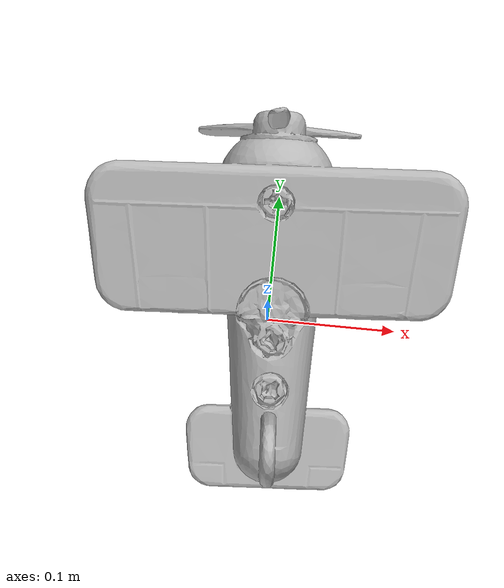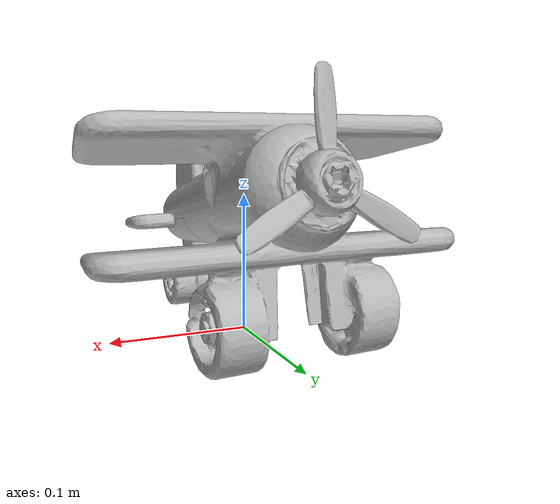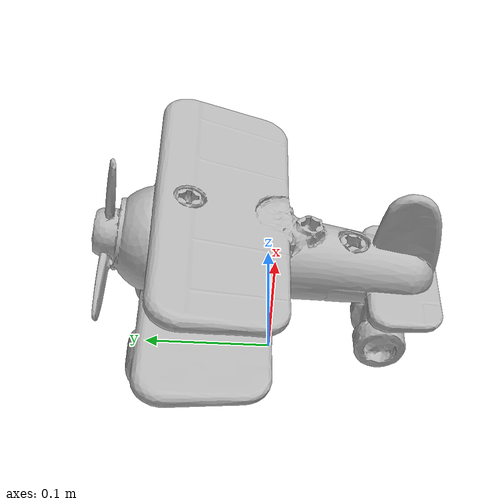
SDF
<?xml version="1.0" ?>
<sdf version='1.8'>
  <model name='ycb_072-a_toy_airplane'>
    <link name='body'>
      <inertial>
        <mass>0.57</mass>
        <pose>0.00159675707 0.0247513991 0.0915731453 0 0 0</pose>
        <inertia>
          <ixx>0.00288949931189</ixx>
          <ixy>5.63447600471e-05</ixy>
          <ixz>7.58527217051e-06</ixz>
          <iyy>0.00199606733571</iyy>
          <iyz>-0.000227239059522</iyz>
          <izz>0.0034033262607</izz>
        </inertia>
      </inertial>
      <visual name='ycb_072-a_toy_airplane_visual'>
        <pose>-0.034128 -0.006056 0.00065 0 0 0</pose>
        <geometry>
          <mesh>
            <uri>model://ycb_072-a_toy_airplane/meshes/textured.dae</uri>
          </mesh>
        </geometry>
      </visual>
      <collision name='ycb_072-a_toy_airplane_collision'>
        <pose>-0.034128 -0.006056 0.00065 0 0 0</pose>
        <geometry>
          <mesh>
            <uri>model://ycb_072-a_toy_airplane/meshes/nontextured.stl</uri>
          </mesh>
        </geometry>
        <max_contacts>10</max_contacts>
        <surface>
          <contact>
            <ode>
              <kp>1e15</kp>
              <kd>1e13</kd>
            </ode>
          </contact>
        </surface>
      </collision>
    </link>
  </model>
</sdf>
